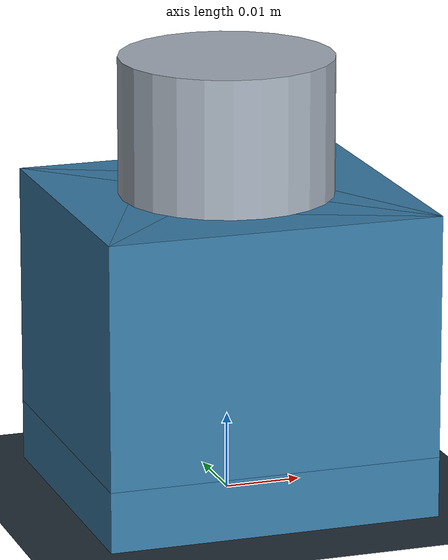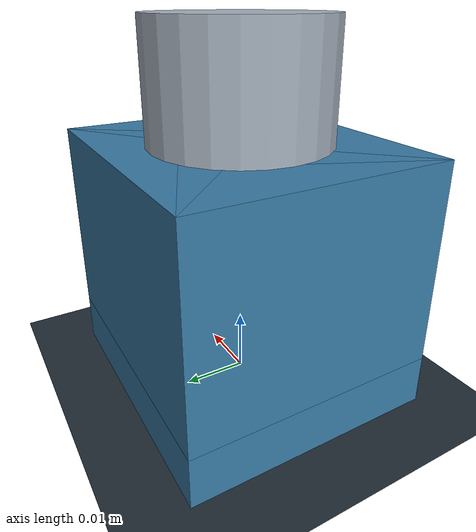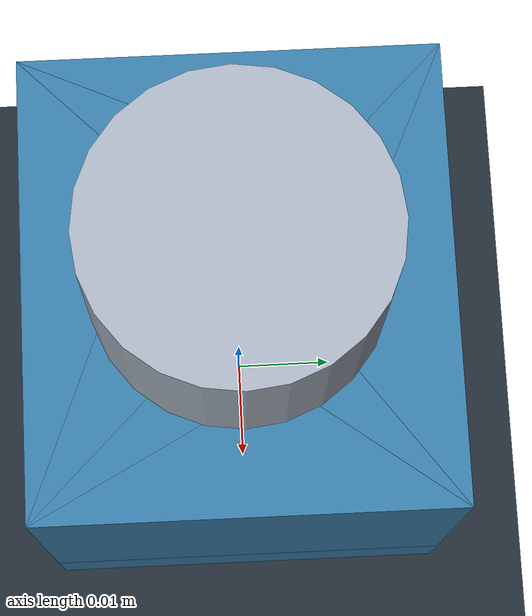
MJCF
<mujoco model="AstraFactory keyed insertion fixture">
  <compiler angle="radian" meshdir="assets" autolimits="true" />
  <option timestep="0.002" integrator="implicitfast" gravity="0 0 -9.81" iterations="80" />
  <visual>
    <global offwidth="960" offheight="720" />
    <headlight ambient=".4 .4 .4" diffuse=".7 .7 .7" />
  </visual>
  <asset>
    <mesh name="peg" file="peg.stl" />
    <mesh name="wall0" file="wall_0.stl" />
    <mesh name="wall1" file="wall_1.stl" />
    <mesh name="wall2" file="wall_2.stl" />
    <mesh name="wall3" file="wall_3.stl" />
    <mesh name="wall4" file="wall_4.stl" />
    <mesh name="wall5" file="wall_5.stl" />
    <mesh name="wall6" file="wall_6.stl" />
    <mesh name="wall7" file="wall_7.stl" />
    <mesh name="wall8" file="wall_8.stl" />
  </asset>
  <default>
    <geom friction=".5 .005 .0001" solref=".005 1" solimp=".95 .99 .001" condim="3" />
  </default>
  <worldbody>
    <light pos="0 -.2 .5" dir="0 .2 -.5" directional="true" />
    <camera name="overview" pos=".13 -.18 .15" xyaxes=".81 .585 0 -.30 .415 .86" />
    <geom name="bench" type="plane" size=".3 .3 .01" rgba=".13 .17 .21 1" />
    <body name="socket">
      <geom name="socket_floor" type="box" pos="0 0 .004" size=".022 .020 .004" rgba=".22 .48 .65 1" />
      <geom name="socket_wall_0" type="mesh" mesh="wall0" rgba=".22 .48 .65 1" />
      <geom name="socket_wall_1" type="mesh" mesh="wall1" rgba=".22 .48 .65 1" />
      <geom name="socket_wall_2" type="mesh" mesh="wall2" rgba=".22 .48 .65 1" />
      <geom name="socket_wall_3" type="mesh" mesh="wall3" rgba=".22 .48 .65 1" />
      <geom name="socket_wall_4" type="mesh" mesh="wall4" rgba=".22 .48 .65 1" />
      <geom name="socket_wall_5" type="mesh" mesh="wall5" rgba=".22 .48 .65 1" />
      <geom name="socket_wall_6" type="mesh" mesh="wall6" rgba=".22 .48 .65 1" />
      <geom name="socket_wall_7" type="mesh" mesh="wall7" rgba=".22 .48 .65 1" />
      <geom name="socket_wall_8" type="mesh" mesh="wall8" rgba=".22 .48 .65 1" />
    </body>
    <body name="held_tool">
      <joint name="tool_x" type="slide" axis="1 0 0" range="-.05 .05" />
      <joint name="tool_y" type="slide" axis="0 1 0" range="-.05 .05" />
      <joint name="tool_z" type="slide" axis="0 0 1" range=".006 .12" />
      <joint name="tool_yaw" type="hinge" axis="0 0 1" range="-1.2 1.2" />
      <inertial pos="0 0 .035" mass=".15" diaginertia=".0001 .0001 .00005" />
      <geom name="peg" type="mesh" mesh="peg" rgba=".96 .63 .16 1" />
      <geom name="tool_holder" type="cylinder" pos="0 0 .048" size=".014 .01" rgba=".65 .69 .74 1" />
    </body>
  </worldbody>
  <actuator>
    <motor name="x" joint="tool_x" ctrlrange="-20 20" />
    <motor name="y" joint="tool_y" ctrlrange="-20 20" />
    <motor name="z" joint="tool_z" ctrlrange="-20 20" />
    <motor name="yaw" joint="tool_yaw" ctrlrange="-.6 .6" />
  </actuator>
</mujoco>
